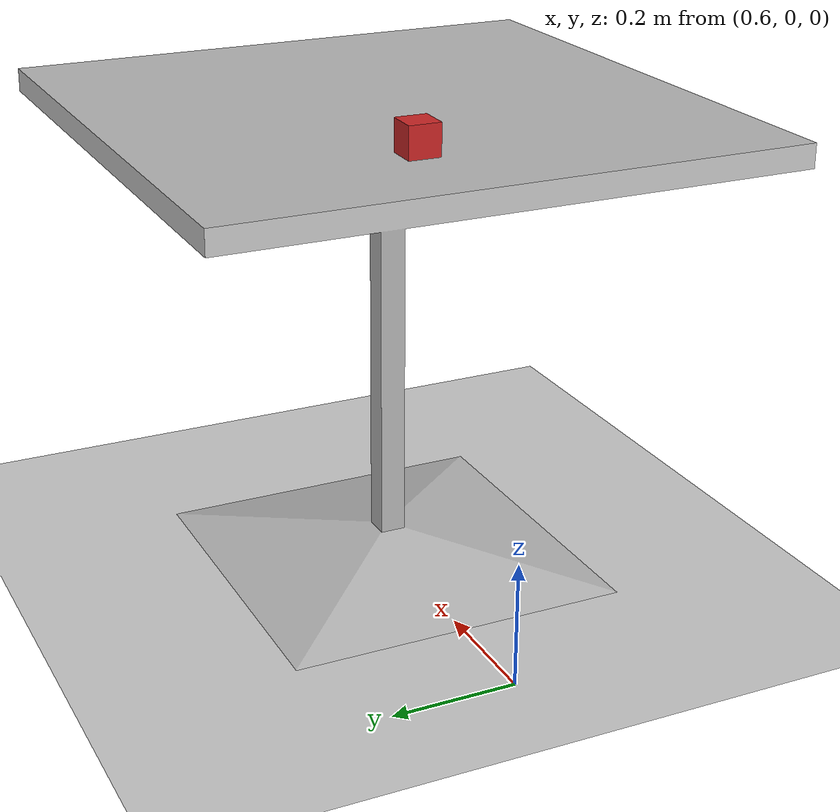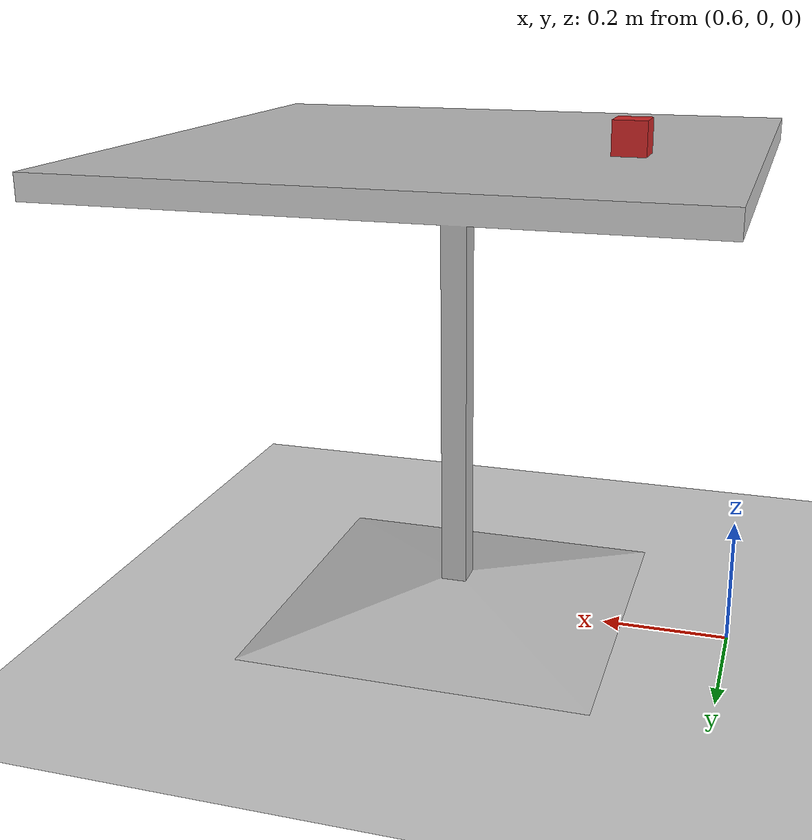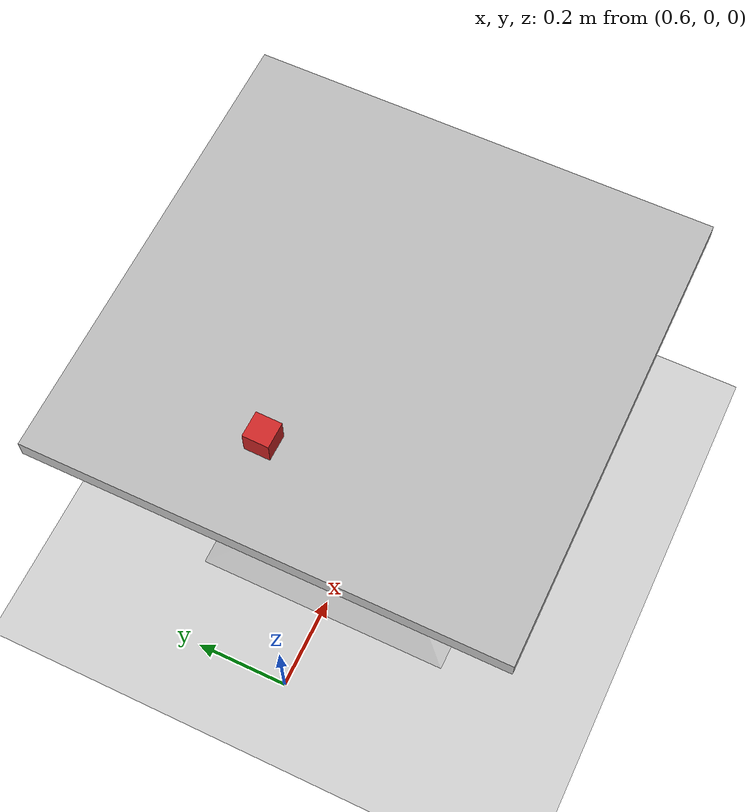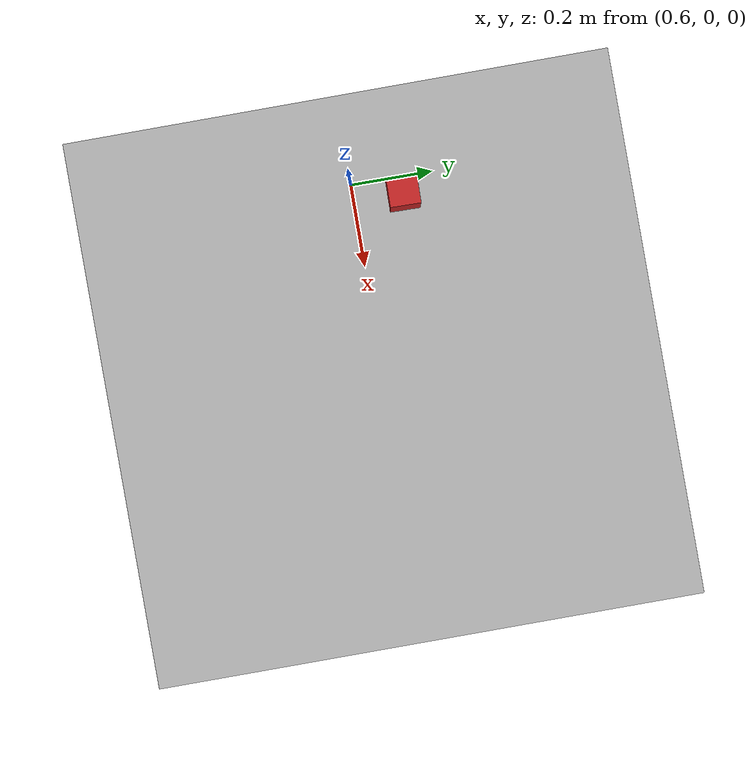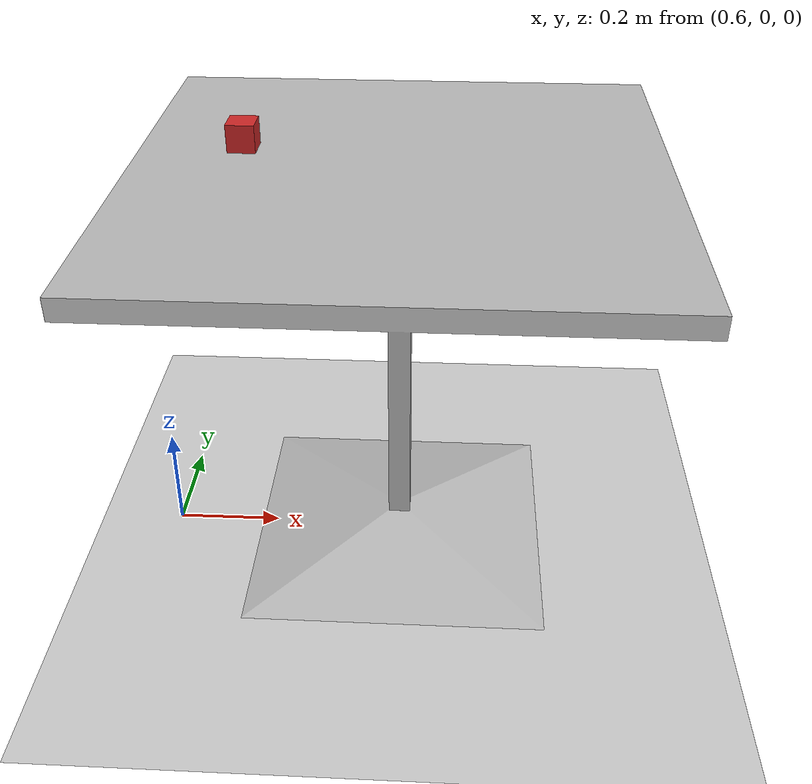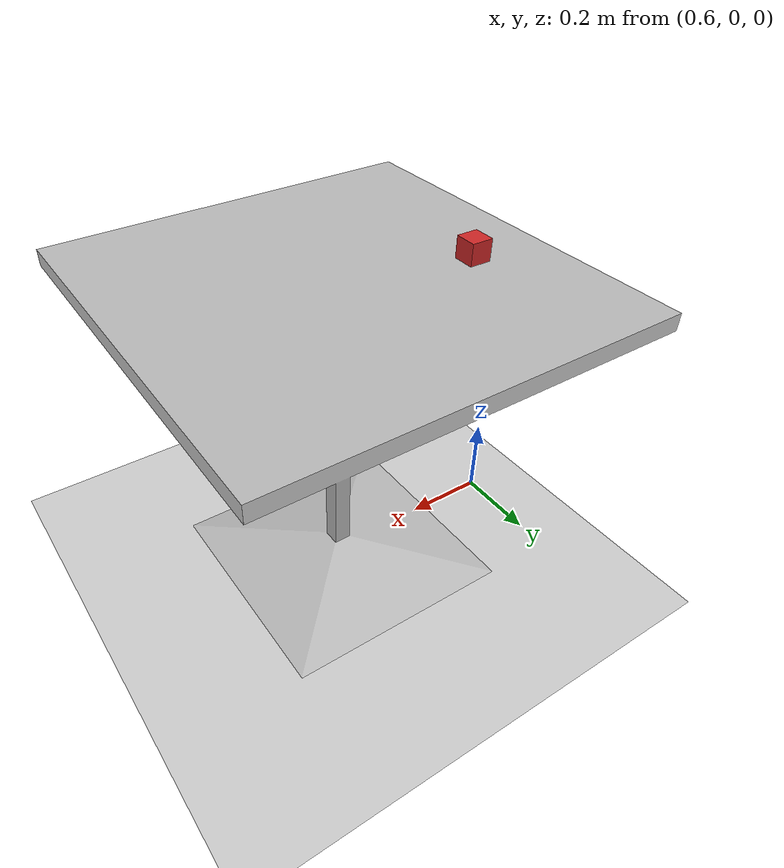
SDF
<sdf version="1.6">
 <world name="default">
  <model name="ground_plane">
   <static>1</static>
   <link name="link">
    <collision name="collision">
     <geometry><plane><normal>0 0 1</normal><size>100 100</size></plane></geometry>
     <surface><friction><ode><mu>100</mu><mu2>50</mu2></ode></friction></surface>
    </collision>
    <visual name="visual">
     <cast_shadows>0</cast_shadows>
     <geometry><plane><normal>0 0 1</normal><size>100 100</size></plane></geometry>
     <material>
      <script><uri>file://media/materials/scripts/gazebo.material</uri><name>Gazebo/Grey</name></script>
     </material>
    </visual>
   </link>
  </model>
  <model name="cafe_table">
   <static>1</static>
   <link name="link">
    <collision name="surface">
     <pose>0 0 0.755 0 -0 0</pose>
     <geometry><box><size>0.913 0.913 0.04</size></box></geometry>
    </collision>
    <collision name="column">
     <pose>0 0 0.37 0 -0 0</pose>
     <geometry><box><size>0.042 0.042 0.74</size></box></geometry>
    </collision>
    <collision name="base">
     <pose>0 0 0.02 0 -0 0</pose>
     <geometry><box><size>0.56 0.56 0.04</size></box></geometry>
    </collision>
    <visual name="visual">
     <geometry><mesh><uri>model://cafe_table/meshes/cafe_table.dae</uri><scale>1 1 1</scale></mesh></geometry>
    </visual>
   </link>
   <pose>1.05 0 0 0 -0 0</pose>
  </model>
  <model name="block">
   <link name="block">
    <inertial>
     <pose>0.025 0.025 0.025 0 -0 0</pose>
     <mass>0.5</mass>
     <inertia><ixx>0.5</ixx><ixy>0</ixy><ixz>0</ixz><iyy>0.5</iyy><iyz>0</iyz><izz>0.5</izz></inertia>
    </inertial>
    <collision name="block_collision">
     <pose>0.025 0.025 0.025 0 -0 0</pose>
     <geometry><box><size>0.05 0.05 0.05</size></box></geometry>
     <surface><friction><ode><mu>1000</mu><mu2>1000</mu2></ode></friction></surface>
    </collision>
    <visual name="block_visual">
     <pose>0.025 0.025 0.025 0 -0 0</pose>
     <geometry><box><size>0.05 0.05 0.05</size></box></geometry>
     <material>
      <script><name>Gazebo/Red</name><uri>file://media/materials/scripts/gazebo.material</uri></script>
     </material>
    </visual>
   </link>
   <pose>0.748078 0.057205 0.775002 0.00032 4.1e-05 -0.018042</pose>
  </model>
 </world>
</sdf>
